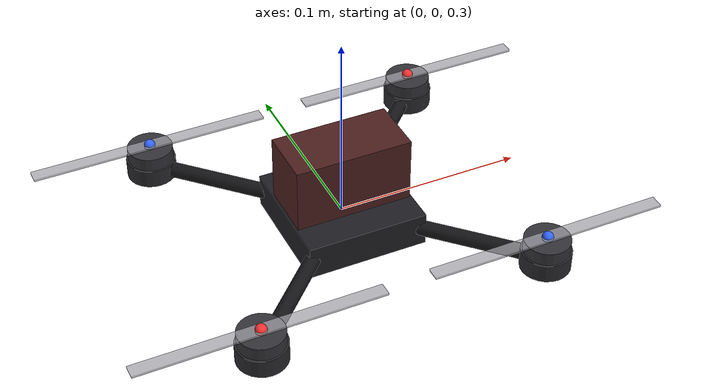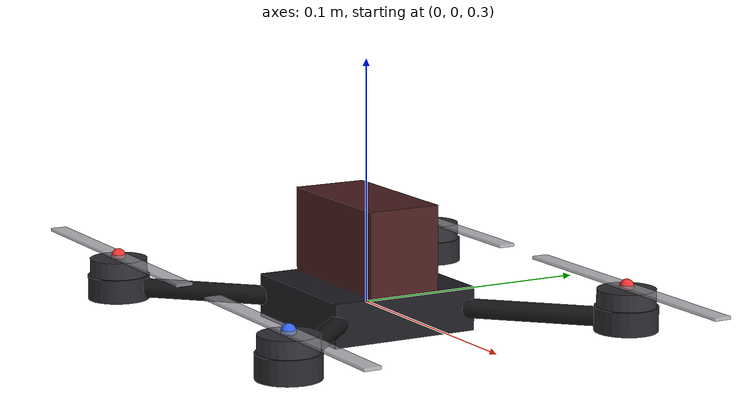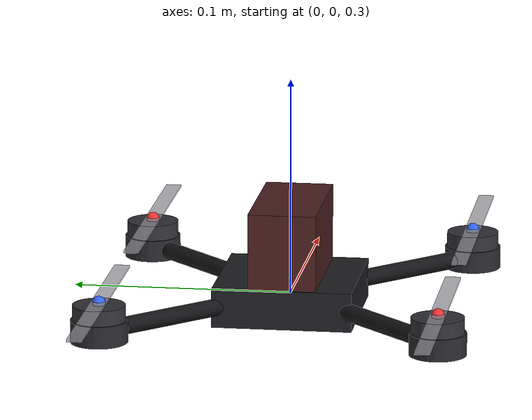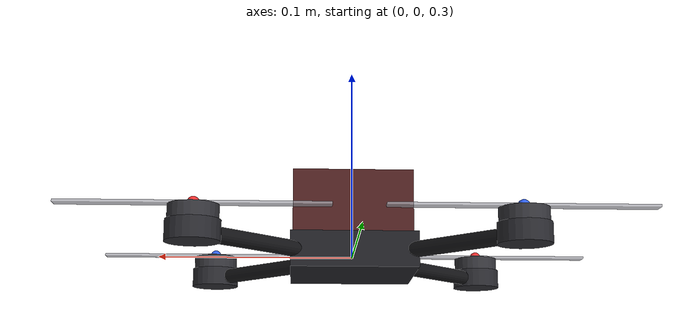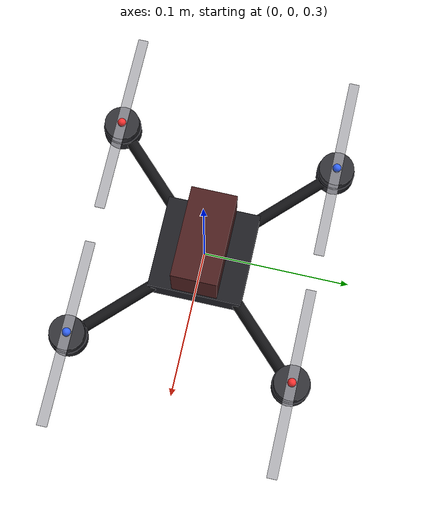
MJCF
<mujoco model="tony5_v0_650">

  <compiler angle="radian" autolimits="true"/>

  <!-- 1 kHz V0 physics. implicitfast is a good default for motor-driven joints. -->
  <option timestep="0.001" integrator="implicitfast" gravity="0 0 -9.80665"/>

  <default>
    <joint damping="0" frictionloss="0" armature="0"/>

    <!-- Visual-only geometry: no collision and no contribution to inertia. -->
    <default class="visual">
      <geom contype="0" conaffinity="0" group="1" mass="0"/>
    </default>

    <!-- Exactly one collision geom for the complete airframe. -->
    <default class="collision">
      <geom contype="1" conaffinity="1" group="3" mass="0"
            friction="0.8 0.02 0.002" solref="0.01 1"/>
    </default>
  </default>

  <worldbody>
    <body name="quad_base" pos="0 0 0.30">
      <freejoint name="root"/>

      <!--
        Fixed portion of the aircraft.
        0.257 kg + 4 * 0.007 kg rotating bodies = 0.285 kg total.
      -->
      <inertial pos="0 0 0"
                mass="0.257"
                diaginertia="4.2e-4 4.4e-4 7.9e-4"/>

      <!-- Single simplified collision body: 130 x 130 x 35 mm. -->
      <geom name="main_collision"
            class="collision"
            type="box"
            size="0.065 0.065 0.0175"
            rgba="0.2 0.2 0.2 0.0"/>

      <!-- Simple central frame/electronics visual. -->
      <geom name="center_visual"
            class="visual"
            type="box"
            size="0.032 0.032 0.009"
            rgba="0.12 0.12 0.14 1"/>

      <!-- Approximate 650 mAh battery visual; mass is already in quad_base inertial. -->
      <geom name="battery_visual"
            class="visual"
            type="box"
            pos="0 0 0.026"
            size="0.031 0.0155 0.018"
            rgba="0.30 0.12 0.12 1"/>

      <!-- Four simple True-X arms, visual only. -->
      <geom name="arm_fl" class="visual" type="capsule"
            fromto="0 0 0  0.076014 0.076014 0"
            size="0.004" rgba="0.08 0.08 0.09 1"/>
      <geom name="arm_fr" class="visual" type="capsule"
            fromto="0 0 0  0.076014 -0.076014 0"
            size="0.004" rgba="0.08 0.08 0.09 1"/>
      <geom name="arm_rr" class="visual" type="capsule"
            fromto="0 0 0  -0.076014 -0.076014 0"
            size="0.004" rgba="0.08 0.08 0.09 1"/>
      <geom name="arm_rl" class="visual" type="capsule"
            fromto="0 0 0  -0.076014 0.076014 0"
            size="0.004" rgba="0.08 0.08 0.09 1"/>

      <!-- Fixed motor stator visuals. Their mass is included in quad_base. -->
      <geom class="visual" type="cylinder" pos="0.076014 0.076014 0"
            size="0.013 0.005" rgba="0.16 0.16 0.18 1"/>
      <geom class="visual" type="cylinder" pos="0.076014 -0.076014 0"
            size="0.013 0.005" rgba="0.16 0.16 0.18 1"/>
      <geom class="visual" type="cylinder" pos="-0.076014 -0.076014 0"
            size="0.013 0.005" rgba="0.16 0.16 0.18 1"/>
      <geom class="visual" type="cylinder" pos="-0.076014 0.076014 0"
            size="0.013 0.005" rgba="0.16 0.16 0.18 1"/>

      <!-- IMU/reference site at the modeled base COM. -->
      <site name="imu_site" pos="0 0 0" size="0.004" rgba="0 1 0 1"/>

      <!-- FRONT LEFT: CW                                                   -->
      <body name="rotor_fl" pos="0.076014 0.076014 0">
        <joint name="rotor_fl_joint" type="hinge" axis="0 0 -1" limited="false"/>
        <inertial pos="0 0 0.006"
                  mass="0.007"
                  diaginertia="1.7e-6 1.7e-6 3.3e-6"/>
        <geom class="visual" type="cylinder" pos="0 0 0.006"
              size="0.012 0.006" rgba="0.20 0.20 0.22 1"/>
        <geom class="visual" type="box" pos="0 0 0.013"
              size="0.0635 0.0035 0.0006" rgba="0.65 0.65 0.68 0.75"/>
        <site name="rotor_fl_site" pos="0 0 0.013" size="0.003" rgba="1 0.2 0.2 1"/>
      </body>

      <!-- FRONT RIGHT: CCW                                                 -->
      <body name="rotor_fr" pos="0.076014 -0.076014 0">
        <joint name="rotor_fr_joint" type="hinge" axis="0 0 1" limited="false"/>
        <inertial pos="0 0 0.006"
                  mass="0.007"
                  diaginertia="1.7e-6 1.7e-6 3.3e-6"/>
        <geom class="visual" type="cylinder" pos="0 0 0.006"
              size="0.012 0.006" rgba="0.20 0.20 0.22 1"/>
        <geom class="visual" type="box" pos="0 0 0.013"
              size="0.0635 0.0035 0.0006" rgba="0.65 0.65 0.68 0.75"/>
        <site name="rotor_fr_site" pos="0 0 0.013" size="0.003" rgba="0.2 0.4 1 1"/>
      </body>

      <!-- REAR RIGHT: CW                                                   -->
      <body name="rotor_rr" pos="-0.076014 -0.076014 0">
        <joint name="rotor_rr_joint" type="hinge" axis="0 0 -1" limited="false"/>
        <inertial pos="0 0 0.006"
                  mass="0.007"
                  diaginertia="1.7e-6 1.7e-6 3.3e-6"/>
        <geom class="visual" type="cylinder" pos="0 0 0.006"
              size="0.012 0.006" rgba="0.20 0.20 0.22 1"/>
        <geom class="visual" type="box" pos="0 0 0.013"
              size="0.0635 0.0035 0.0006" rgba="0.65 0.65 0.68 0.75"/>
        <site name="rotor_rr_site" pos="0 0 0.013" size="0.003" rgba="1 0.2 0.2 1"/>
      </body>

      <!-- REAR LEFT: CCW                                                   -->
      <body name="rotor_rl" pos="-0.076014 0.076014 0">
        <joint name="rotor_rl_joint" type="hinge" axis="0 0 1" limited="false"/>
        <inertial pos="0 0 0.006"
                  mass="0.007"
                  diaginertia="1.7e-6 1.7e-6 3.3e-6"/>
        <geom class="visual" type="cylinder" pos="0 0 0.006"
              size="0.012 0.006" rgba="0.20 0.20 0.22 1"/>
        <geom class="visual" type="box" pos="0 0 0.013"
              size="0.0635 0.0035 0.0006" rgba="0.65 0.65 0.68 0.75"/>
        <site name="rotor_rl_site" pos="0 0 0.013" size="0.003" rgba="0.2 0.4 1 1"/>
      </body>
    </body>
  </worldbody>

  <!--
    Sensors are noiseless in V0 and are convenient for debugging / observations.
    The rotor speeds can also be read directly from qvel in MJLab.
  -->
  <sensor>
    <gyro name="imu_gyro" site="imu_site"/>
    <accelerometer name="imu_accel" site="imu_site"/>

    <jointvel name="rotor_fl_speed" joint="rotor_fl_joint"/>
    <jointvel name="rotor_fr_speed" joint="rotor_fr_joint"/>
    <jointvel name="rotor_rr_speed" joint="rotor_rr_joint"/>
    <jointvel name="rotor_rl_speed" joint="rotor_rl_joint"/>
  </sensor>
</mujoco>
